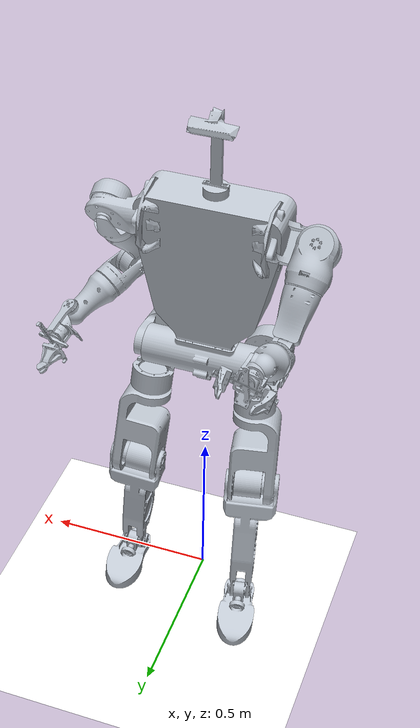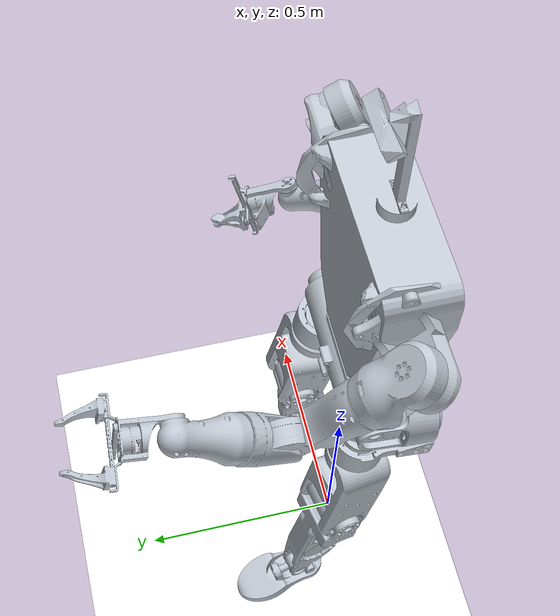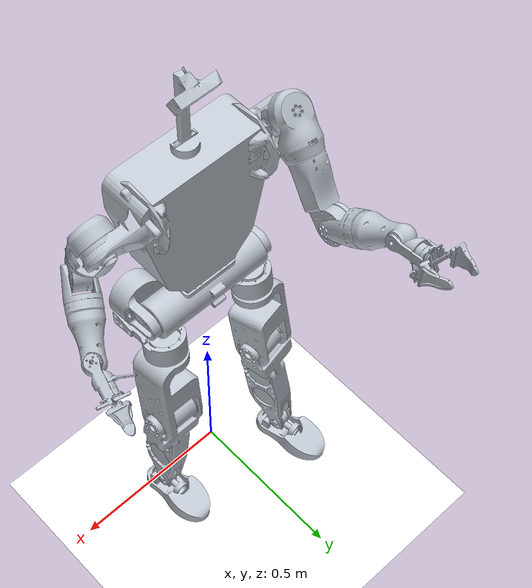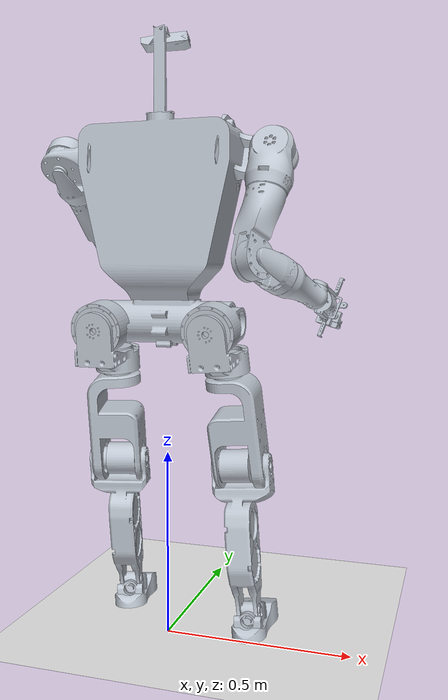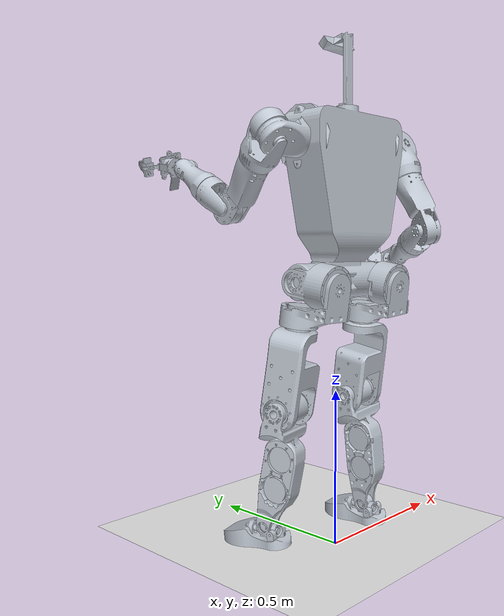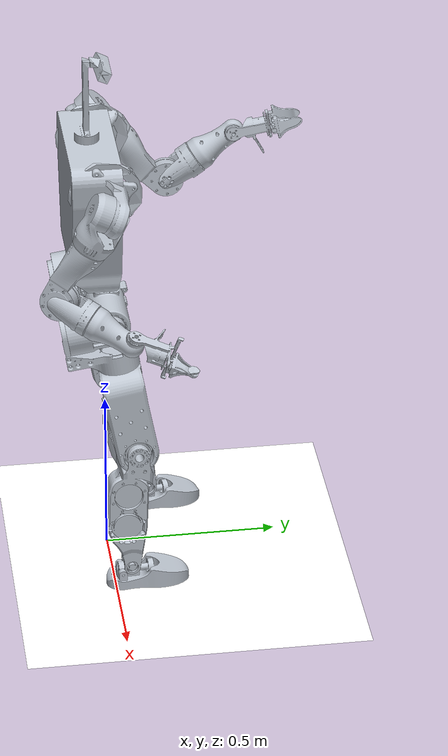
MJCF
<mujoco model="watonomous">
  <compiler angle="radian" meshdir="meshes" />
  <default>
    <motor ctrlrange="-1 1" ctrllimited="true" />
    <joint actuatorfrclimited="true" />
  </default>
  <asset>
    <mesh name="Left_ankle_rs03_bottom_2" content_type="model/stl" file="Left_ankle_rs03_bottom_2.stl" />
    <mesh name="Mirrorlink1__1__1" content_type="model/stl" file="Mirrorlink1__1__1.stl" />
    <mesh name="Mirrorlink2__1__1" content_type="model/stl" file="Mirrorlink2__1__1.stl" />
    <mesh name="Mirrorlink3__1__1" content_type="model/stl" file="Mirrorlink3__1__1.stl" />
    <mesh name="Mirrorlink4__1__1" content_type="model/stl" file="Mirrorlink4__1__1.stl" />
    <mesh name="Mirrorlink5__1__1" content_type="model/stl" file="Mirrorlink5__1__1.stl" />
    <mesh name="Mirrorlink6__1__1" content_type="model/stl" file="Mirrorlink6__1__1.stl" />
    <mesh name="Mirrorlink7__1__1" content_type="model/stl" file="Mirrorlink7__1__1.stl" />
    <mesh name="Mirrorlink8__1__1" content_type="model/stl" file="Mirrorlink8__1__1.stl" />
    <mesh name="Torso_1" content_type="model/stl" file="Torso_1.stl" />
    <mesh name="baseLink__1__1" content_type="model/stl" file="baseLink__1__1.stl" />
    <mesh name="base_link_1" content_type="model/stl" file="base_link_1.stl" />
    <mesh name="left_ankle_rs03_top_2" content_type="model/stl" file="left_ankle_rs03_top_2.stl" />
    <mesh name="left_calf_1" content_type="model/stl" file="left_calf_1.stl" />
    <mesh name="left_foot_1" content_type="model/stl" file="left_foot_1.stl" />
    <mesh name="left_foot_joint_1" content_type="model/stl" file="left_foot_joint_1.stl" />
    <mesh name="left_hip_a_1" content_type="model/stl" file="left_hip_a_1.stl" />
    <mesh name="left_hip_akh70_2" content_type="model/stl" file="left_hip_akh70_2.stl" />
    <mesh name="left_hip_r_1" content_type="model/stl" file="left_hip_r_1.stl" />
    <mesh name="left_hip_rs04_2" content_type="model/stl" file="left_hip_rs04_2.stl" />
    <mesh name="left_knee_akh70_2" content_type="model/stl" file="left_knee_akh70_2.stl" />
    <mesh name="left_thigh_1" content_type="model/stl" file="left_thigh_1.stl" />
    <mesh name="left_thigh_rs03_2" content_type="model/stl" file="left_thigh_rs03_2.stl" />
    <mesh name="link1__1__1" content_type="model/stl" file="link1__1__1.stl" />
    <mesh name="link2__1__1" content_type="model/stl" file="link2__1__1.stl" />
    <mesh name="link3__1__1" content_type="model/stl" file="link3__1__1.stl" />
    <mesh name="link4__1__1" content_type="model/stl" file="link4__1__1.stl" />
    <mesh name="link5__1__1" content_type="model/stl" file="link5__1__1.stl" />
    <mesh name="link6__1__1" content_type="model/stl" file="link6__1__1.stl" />
    <mesh name="link7__1__1" content_type="model/stl" file="link7__1__1.stl" />
    <mesh name="link8__1__1" content_type="model/stl" file="link8__1__1.stl" />
    <mesh name="right_ankle_rs03_bottom_1" content_type="model/stl" file="right_ankle_rs03_bottom_1.stl" />
    <mesh name="right_ankle_rs03_top_1" content_type="model/stl" file="right_ankle_rs03_top_1.stl" />
    <mesh name="right_calf_1" content_type="model/stl" file="right_calf_1.stl" />
    <mesh name="right_foot_1" content_type="model/stl" file="right_foot_1.stl" />
    <mesh name="right_foot_joint_1" content_type="model/stl" file="right_foot_joint_1.stl" />
    <mesh name="right_hip_a_1" content_type="model/stl" file="right_hip_a_1.stl" />
    <mesh name="right_hip_akh70_1" content_type="model/stl" file="right_hip_akh70_1.stl" />
    <mesh name="right_hip_r_1" content_type="model/stl" file="right_hip_r_1.stl" />
    <mesh name="right_hip_rs04_1" content_type="model/stl" file="right_hip_rs04_1.stl" />
    <mesh name="right_knee_akh70_1" content_type="model/stl" file="right_knee_akh70_1.stl" />
    <mesh name="right_thigh_1" content_type="model/stl" file="right_thigh_1.stl" />
    <mesh name="right_thigh_rs03_1" content_type="model/stl" file="right_thigh_rs03_1.stl" />
  </asset>
  <worldbody>
    <body name="base_link" pos="0 0 0.8535">
      <freejoint name="floating_base" />
      <inertial pos="-1.20497e-07 3.93947e-08 -0.00012957" quat="3.76761e-05 0.707107 3.75111e-05 0.707107" mass="1.19665" diaginertia="0.0150146 0.0149971 0.00326235" />
      <geom quat="1 0 0 0" type="mesh" mesh="base_link_1" rgba="0.75 0.78 0.82 1" />
      <body name="left_hip_a_1" pos="0.1725 0 0">
        <inertial pos="-0.334636 -0.0659424 -0.00910036" quat="0.627069 0.693475 -0.242356 -0.259115" mass="0.491846" diaginertia="0.00174758 0.00150854 0.00123942" />
        <joint name="left_hip_a_akh70" range="-3.14159 3.14159" actuatorfrcrange="-10 10" axis="1 0 0" />
        <geom pos="0 0 0" quat="1 0 0 0" type="mesh" mesh="left_hip_a_1" rgba="0.75 0.78 0.82 1" />
        <body name="left_hip_r_1" pos="-0.324 -0.124226 -0.0178379">
          <inertial pos="-0.000993292 0.0688852 -0.0674795" quat="0.321097 0.634504 -0.629266 0.31357" mass="0.67665" diaginertia="0.0038984 0.00373833 0.0012894" />
          <joint name="left_hip_r_rs04" range="-3.14159 3.14159" actuatorfrcrange="-10 10" axis="0 -0.989847 -0.142134" />
          <geom pos="0 0 0" quat="1 0 0 0" type="mesh" mesh="left_hip_r_1" rgba="0.75 0.78 0.82 1" />
          <body name="left_thigh_1" pos="-0.0017637 0.146029 -0.116415">
            <inertial pos="-0.0180835 0.0123797 -0.130626" quat="0.642525 0.0589338 -0.0372262 0.763088" mass="2.17912" diaginertia="0.0150862 0.0138054 0.00643898" />
            <joint name="left_thigh_rs03" range="-3.14159 3.14159" actuatorfrcrange="-10 10" axis="-0.0129684 0.142122 -0.989764" />
            <geom pos="0 0 0" quat="1 0 0 0" type="mesh" mesh="left_thigh_1" rgba="0.75 0.78 0.82 1" />
            <body name="left_calf_1" pos="0.0529001 0.0488549 -0.257882">
              <inertial pos="-0.0666406 0.0118696 -0.152758" quat="0.401908 0.0944338 -0.0890123 0.906438" mass="1.43369" diaginertia="0.0187737 0.0185226 0.00331151" />
              <joint name="left_knee_akh70" range="-0.01 2.3671" actuatorfrcrange="-10 10" axis="-0.978979 -0.203302 -0.0163655" />
              <geom pos="0 0 0" quat="1 0 0 0" type="mesh" mesh="left_calf_1" rgba="0.75 0.78 0.82 1" />
              <body name="Left_ankle_rs03_bottom_2" pos="-0.062919 0.0243711 -0.257128" quat="0.0259317 0.994393 0.10194 0.0108873">
                <inertial pos="0.000163048 3.73708e-08 0.000186383" quat="1 0 -0.000458908 0" mass="0.350905" diaginertia="0.000355215 0.00026261 0.000258651" />
                <geom type="mesh" mesh="Left_ankle_rs03_bottom_2" rgba="0.75 0.78 0.82 1" />
              </body>
              <body name="left_ankle_rs03_top_2" pos="-0.0577604 0.00378351 -0.157199" quat="0.993185 -0.0554329 -0.013908 0.101572">
                <inertial pos="0.000163047 1.40134e-06 -0.000186253" quat="0.999994 -0.0033125 0.000458885 4.82048e-06" mass="0.350905" diaginertia="0.000355215 0.00026261 0.000258651" />
                <geom quat="1 0 0 0" type="mesh" mesh="left_ankle_rs03_top_2" rgba="0.75 0.78 0.82 1" />
              </body>
              <body name="left_foot_joint_1" pos="-0.0980839 0.0631868 -0.386417">
                <inertial pos="0.0312043 0.00788592 -0.00926134" quat="0.658595 0.745481 0.0711374 0.0738229" mass="0.097636" diaginertia="5.00843e-05 4.04901e-05 3.16199e-05" />
                <joint name="left_foot_joint_simMotor1" range="-3.14159 3.14159" actuatorfrcrange="-10 10" axis="-0.978979 -0.203302 -0.0163655" />
                <geom quat="1 0 0 0" type="mesh" mesh="left_foot_joint_1" rgba="0.75 0.78 0.82 1" />
                <body name="left_foot_1" pos="0.0189421 0.0679296 -0.021642">
                  <inertial pos="0.00191123 -0.00155989 -0.0231386" quat="0.44839 0.506539 -0.442558 0.588649" mass="0.699866" diaginertia="0.00330102 0.00285448 0.000756632" />
                  <joint name="left_foot_joint_simMotor2" range="-3.14159 3.14159" actuatorfrcrange="-10 10" axis="0.201805 -0.977146 0.0667937" />
                  <geom quat="1 0 0 0" type="mesh" mesh="left_foot_1" rgba="0.75 0.78 0.82 1" />
                </body>
              </body>
            </body>
            <body name="left_hip_akh70_2" pos="-0.00290175 0.0372667 -0.258815" quat="0.993185 -0.0554329 -0.013908 0.101572">
              <inertial pos="0 0 2.1837e-09" quat="0.5 0.5 0.5 0.5" mass="0.508938" diaginertia="0.000529083 0.000529083 0.0005153" />
              <geom quat="1 0 0 0" type="mesh" mesh="left_hip_akh70_2" rgba="0.75 0.78 0.82 1" />
            </body>
          </body>
          <body name="left_hip_rs04_2" pos="-4.52641e-08 0.0238707 0.00342765" quat="0.997459 0.0712483 0 0">
            <inertial pos="4.52641e-08 -0.000200636 0" quat="0.707107 0 0 0.707107" mass="0.531297" diaginertia="0.000893588 0.000554602 0.000554602" />
            <geom quat="1 0 0 0" type="mesh" mesh="left_hip_rs04_2" rgba="0.75 0.78 0.82 1" />
          </body>
          <body name="left_thigh_rs03_2" pos="-0.00127631 0.14131 -0.0805746" quat="0.997207 0.0710873 0.00803331 -0.021476">
            <inertial pos="4.45266e-08 -0.00018612 0.000163052" quat="0.49977 0.500229 -0.500229 0.49977" mass="0.350905" diaginertia="0.000355215 0.00026261 0.000258651" />
            <geom quat="1 0 0 0" type="mesh" mesh="left_thigh_rs03_2" rgba="0.75 0.78 0.82 1" />
          </body>
        </body>
      </body>
      <body name="right_hip_a_1" pos="0.1805 0 0">
        <inertial pos="-0.0183642 -0.0658303 -0.00987847" quat="0.622963 0.697167 0.240819 0.260541" mass="0.491846" diaginertia="0.00174758 0.00150854 0.00123942" />
        <joint name="right_hip_a_akh70" range="-3.14159 3.14159" actuatorfrcrange="-10 10" axis="1 0 0" />
        <geom quat="1 0 0 0" type="mesh" mesh="right_hip_a_1" rgba="0.75 0.78 0.82 1" />
        <body name="right_hip_r_1" pos="-0.029 -0.124007 -0.0193037">
          <inertial pos="0.00579209 0.0696446 -0.0664509" quat="0.291509 0.617894 -0.648721 0.335249" mass="0.67665" diaginertia="0.0038984 0.00373833 0.0012894" />
          <joint name="right_hip_r_rs04" range="-3.14159 3.14159" actuatorfrcrange="-10 10" axis="0 0.9881 0.153815" />
          <geom pos="0 0 0" quat="1 0 0 0" type="mesh" mesh="right_hip_r_1" rgba="0.75 0.78 0.82 1" />
          <body name="right_hip_rs04_1" pos="4.4896e-08 0.0238286 0.00370933" quat="0.995132 0.076991 -0.0613434 -0.00474599">
            <inertial pos="-4.52641e-08 -0.000200636 0" quat="0.707107 0 0 0.707107" mass="0.531297" diaginertia="0.000893588 0.000554602 0.000554602" />
            <geom quat="1 0 0 0" type="mesh" mesh="right_hip_rs04_1" rgba="0.75 0.78 0.82 1" />
          </body>
          <body name="right_thigh_1" pos="0.0102847 0.147336 -0.114308">
            <inertial pos="0.0256342 0.0179485 -0.128484" quat="0.67507 0.0122862 -0.0919189 0.731902" mass="2.17912" diaginertia="0.0150862 0.0138054 0.00643898" />
            <joint name="right_thigh_rs03" range="-3.14159 3.14159" actuatorfrcrange="-10 10" axis="-0.0756231 -0.153374 0.98527" />
            <geom pos="0 0 0" quat="1 0 0 0" type="mesh" mesh="right_thigh_1" rgba="0.75 0.78 0.82 1" />
            <body name="right_calf_1" pos="-0.0282213 0.038187 -0.261631">
              <inertial pos="0.0673126 -0.0116473 -0.148101" quat="0.852802 -0.0365474 -0.0642176 0.516981" mass="1.4337" diaginertia="0.0187736 0.0185225 0.00331152" />
              <joint name="right_knee_akh70" range="-2.1008 0.2492" actuatorfrcrange="-10 10" axis="0.995783 0.0398417 0.0826321" />
              <geom pos="0 0 0" quat="1 0 0 0" type="mesh" mesh="right_calf_1" rgba="0.75 0.78 0.82 1" />
              <body name="right_ankle_rs03_bottom_1" pos="0.0721302 -0.0271261 -0.252874" quat="0.998906 -0.0088435 -0.0415346 0.0195749">
                <inertial pos="-0.000163048 3.73708e-08 0.000186383" quat="1 0 0.000458908 0" mass="0.350905" diaginertia="0.000355215 0.00026261 0.000258651" />
                <geom type="mesh" mesh="right_ankle_rs03_bottom_1" rgba="0.75 0.78 0.82 1" />
              </body>
              <body name="right_ankle_rs03_top_1" pos="0.0609499 -0.0226191 -0.150571" quat="0.998906 -0.0088435 -0.0415346 0.0195749">
                <inertial pos="-0.000163047 1.40134e-06 -0.000186253" quat="0.999994 -0.0033125 -0.000458885 -4.82048e-06" mass="0.350905" diaginertia="0.000355215 0.00026261 0.000258651" />
                <geom quat="1 0 0 0" type="mesh" mesh="right_ankle_rs03_top_1" rgba="0.75 0.78 0.82 1" />
              </body>
              <body name="right_foot_joint_1" pos="0.11139 -0.0145845 -0.385309">
                <inertial pos="-0.0251758 0.00107408 -0.0117768" quat="0.633909 0.772044 -0.0108338 0.04462" mass="0.097636" diaginertia="5.00843e-05 4.04901e-05 3.16199e-05" />
                <joint name="right_foot_joint_simMotor1" range="-3.14159 3.14159" actuatorfrcrange="-10 10" axis="-0.995783 -0.0398417 -0.0826321" />
                <geom quat="1 0 0 0" type="mesh" mesh="right_foot_joint_1" rgba="0.75 0.78 0.82 1" />
                <body name="right_foot_1" pos="-0.0235242 -0.0228609 -0.0201394">
                  <inertial pos="-0.0013897 0.0857708 -0.0227092" quat="0.472471 0.481304 -0.506825 0.536886" mass="0.699869" diaginertia="0.00330112 0.00285461 0.000756613" />
                  <joint name="right_foot_joint_simMotor2" range="-3.14159 3.14159" actuatorfrcrange="-10 10" axis="0.0404269 -0.999168 -0.00542131" />
                  <geom pos="0 0 0" quat="1 0 0 0" type="mesh" mesh="right_foot_1" rgba="0.75 0.78 0.82 1" />
                </body>
              </body>
            </body>
            <body name="right_hip_akh70_1" pos="0.0155932 0.03994 -0.257995" quat="0.998906 -0.0088435 -0.0415346 0.0195749">
              <inertial pos="0 0 2.1837e-09" quat="0.5 0.5 0.5 0.5" mass="0.508938" diaginertia="0.000529083 0.000529083 0.0005153" />
              <geom quat="1 0 0 0" type="mesh" mesh="right_hip_akh70_1" rgba="0.75 0.78 0.82 1" />
            </body>
          </body>
          <body name="right_thigh_rs03_1" pos="0.00843775 0.14405 -0.0904504" quat="0.996077 0.0761313 -0.039609 0.0215693">
            <inertial pos="-9.25839e-08 -0.000186307 0.000163053" quat="0.49977 0.500229 -0.500229 0.49977" mass="0.350905" diaginertia="0.000355215 0.00026261 0.000258651" />
            <geom quat="1 0 0 0" type="mesh" mesh="right_thigh_rs03_1" rgba="0.75 0.78 0.82 1" />
          </body>
        </body>
        <body name="right_knee_akh70_1" pos="-0.04 -3.57798e-08 -2.23571e-08">
          <inertial pos="0 3.57799e-08 2.23571e-08" quat="0.5 0.5 0.5 0.5" mass="0.508938" diaginertia="0.000529083 0.000529083 0.0005153" />
          <geom quat="1 0 0 0" type="mesh" mesh="right_knee_akh70_1" rgba="0.75 0.78 0.82 1" />
        </body>
      </body>
      <body name="left_knee_akh70_2" pos="-0.1405 -3.57798e-08 -2.23571e-08">
        <inertial pos="0 3.57799e-08 2.23571e-08" quat="0.5 0.5 0.5 0.5" mass="0.508938" diaginertia="0.000529083 0.000529083 0.0005153" />
        <geom quat="1 0 0 0" type="mesh" mesh="left_knee_akh70_2" rgba="0.75 0.78 0.82 1" />
      </body>
      <body name="Torso_1" pos="-0.000265633 -0.0328623 0.316904">
        <inertial pos="6.30908e-07 -0.000495985 -0.00370899" quat="0.707094 -0.00433449 0.00435114 0.707093" mass="20.7857" diaginertia="0.522099 0.337545 0.251238" />
        <geom quat="1 0 0 0" type="mesh" mesh="Torso_1" rgba="0.75 0.78 0.82 1" />
        <body name="baseLink__1__1" pos="-0.000171042 0.0249092 0.202255" quat="0.707107 0.707107 0 0">
          <inertial pos="5.96184e-05 -0.0572138 0.00368352" quat="0.00672254 0.707076 0.00697154 0.707071" mass="1.43809" diaginertia="0.044226 0.031185 0.0170028" />
          <geom quat="1 0 0 0" type="mesh" mesh="baseLink__1__1" rgba="0.75 0.78 0.82 1" />
          <body name="Mirrorlink1__1__1" pos="-0.174956 -0.0937785 0.0022638" quat="0.707107 -0.707107 0 0">
            <inertial pos="-0.0749027 -0.00423957 -0.00450875" quat="0.249724 0.630239 0.270776 0.68346" mass="0.946635" diaginertia="0.0034469 0.0031871 0.00161968" />
            <joint name="left_shoulder_ak10_1_pitch" range="-3.14159 3.14159" actuatorfrcrange="-10 10" axis="1 0 0" />
            <geom pos="0 0 0" quat="1 0 0 0" type="mesh" mesh="Mirrorlink1__1__1" rgba="0.75 0.78 0.82 1" />
            <body name="Mirrorlink2__1__1" pos="-0.118 0.0231635 0.0246435">
              <inertial pos="0.00505842 0.0238275 -0.0408455" quat="0.569672 0.370412 -0.460133 0.571442" mass="0.524799" diaginertia="0.00172195 0.00166282 0.000944388" />
              <joint name="left_shoulder_ak10_2_roll" range="-3.14159 3.14159" actuatorfrcrange="-10 10" axis="0 0.684889 0.728648" />
              <geom quat="1 0 0 0" type="mesh" mesh="Mirrorlink2__1__1" rgba="0.75 0.78 0.82 1" />
              <body name="Mirrorlink3__1__1" pos="0.0127184 0.0655119 -0.0983581">
                <inertial pos="0.0116059 0.0679991 -0.0720769" quat="0.917582 0.392949 -0.0602576 0.00164175" mass="0.617862" diaginertia="0.00343804 0.00334021 0.00082279" />
                <joint name="left_elbow_ak80_1_yaw" range="-3.14159 3.14159" actuatorfrcrange="-10 10" axis="0.109831 0.72424 -0.680745" />
                <geom pos="0 0 0" quat="1 0 0 0" type="mesh" mesh="Mirrorlink3__1__1" rgba="0.75 0.78 0.82 1" />
                <body name="Mirrorlink4__1__1" pos="-0.0066485 0.134572 -0.12981">
                  <inertial pos="0.0233741 0.0437133 0.0335335" quat="0.319371 0.571173 -0.667501 0.355254" mass="0.236091" diaginertia="0.000495335 0.000357572 0.000333954" />
                  <joint name="left_elbow_ak80_2_bend" range="-1.1553 1.3947" actuatorfrcrange="-10 10" axis="-0.990026 0.018913 -0.139609" />
                  <geom pos="0 0 0" quat="1 0 0 0" type="mesh" mesh="Mirrorlink4__1__1" rgba="0.75 0.78 0.82 1" />
                  <body name="Mirrorlink5__1__1" pos="0.0198227 0.0866623 0.0609852">
                    <inertial pos="-0.00570706 0.0620362 0.0405389" quat="0.466476 0.877253 -0.0929979 0.0646407" mass="0.260214" diaginertia="0.000838287 0.000824981 0.000259347" />
                    <joint name="left_elbow_ak80_3_forearm" range="-3.14159 3.14159" actuatorfrcrange="-10 10" axis="-0.0613685 0.834101 0.548188" />
                    <geom quat="1 0 0 0" type="mesh" mesh="Mirrorlink5__1__1" rgba="0.75 0.78 0.82 1" />
                    <body name="Mirrorlink6__1__1" pos="0.00606767 0.108213 0.0749958">
                      <inertial pos="-0.000346416 0.0638444 0.0087323" quat="0.52071 0.441188 -0.651758 0.330796" mass="0.12042" diaginertia="0.000213813 0.000192995 8.72472e-05" />
                      <joint name="left_wrist_gl40" range="-3.14159 3.14159" actuatorfrcrange="-10 10" axis="0.972892 -0.0727014 0.219533" />
                      <geom pos="0 0 0" quat="1 0 0 0" type="mesh" mesh="Mirrorlink6__1__1" rgba="0.75 0.78 0.82 1" />
                      <body name="Mirrorlink7__1__1" pos="0.063669 0.10578 0.0283409">
                        <inertial pos="-0.0168411 0.0261004 0.00873655" quat="0.595432 0.78365 -0.176782 0.0100159" mass="0.0372921" diaginertia="2.58482e-05 1.98943e-05 9.22e-06" />
                        <joint name="left_claw_1" type="slide" range="-0.012 0.1132" actuatorfrcrange="-10 10" axis="-0.972892 0.0727014 -0.219533" />
                        <geom quat="1 0 0 0" type="mesh" mesh="Mirrorlink7__1__1" rgba="0.75 0.78 0.82 1" />
                      </body>
                      <body name="Mirrorlink8__1__1" pos="-0.0790833 0.114302 0.00770496">
                        <inertial pos="0.0185682 0.026371 0.000986306" quat="0.66742 0.727539 -0.0612952 0.146559" mass="0.0372921" diaginertia="2.58483e-05 1.98943e-05 9.22004e-06" />
                        <joint name="left_claw_2" type="slide" range="-0.0022 0.124" actuatorfrcrange="-10 10" axis="0.972892 -0.0727014 0.219533" />
                        <geom quat="1 0 0 0" type="mesh" mesh="Mirrorlink8__1__1" rgba="0.75 0.78 0.82 1" />
                      </body>
                    </body>
                  </body>
                </body>
              </body>
            </body>
          </body>
          <body name="link1__1__1" pos="0.176102 -0.0937785 0.0022638" quat="0.707107 -0.707107 0 0">
            <inertial pos="0.073903 0.00552871 -0.00278143" quat="0.577095 0.355707 0.625788 0.385777" mass="0.946645" diaginertia="0.00344694 0.00318714 0.00161969" />
            <joint name="right_shoulder_ak10_1_pitch" range="-3.14159 3.14159" actuatorfrcrange="-10 10" axis="1 0 0" />
            <geom pos="0 0 0" quat="1 0 0 0" type="mesh" mesh="link1__1__1" rgba="0.75 0.78 0.82 1" />
            <body name="link2__1__1" pos="0.117 -0.0248558 0.0124976">
              <inertial pos="-0.00252818 -0.0138114 -0.0440368" quat="0.325436 0.625471 -0.644454 0.295899" mass="0.5248" diaginertia="0.00172196 0.00166283 0.000944396" />
              <joint name="right_shoulder_ak10_2_roll" range="-3.14159 3.14159" actuatorfrcrange="-10 10" axis="0 0.893422 -0.449218" />
              <geom type="mesh" mesh="link2__1__1" rgba="0.75 0.78 0.82 1" />
              <body name="link3__1__1" pos="-0.00656941 -0.0335774 -0.113083">
                <inertial pos="-0.024491 -0.0461959 -0.0993159" quat="0.947706 -0.22367 0.0286298 -0.225845" mass="0.342962" diaginertia="0.00197483 0.00177842 0.000319943" />
                <joint name="right_elbow_ak80_1_yaw" range="-3.14159 3.14159" actuatorfrcrange="-10 10" axis="-0.0564867 -0.4485 -0.891996" />
                <geom type="mesh" mesh="link3__1__1" rgba="0.75 0.78 0.82 1" />
                <body name="link4__1__1" pos="-0.0237878 -0.0755627 -0.166331">
                  <inertial pos="0.0402839 0.0349208 -0.0173156" quat="0.682726 0.254868 -0.476915 0.491406" mass="0.236092" diaginertia="0.000495334 0.000357572 0.000333954" />
                  <joint name="right_elbow_ak80_2_bend" range="-0.8936 1.6564" actuatorfrcrange="-10 10" axis="-0.879792 0.444721 -0.167894" />
                  <geom pos="0 0 0" quat="1 0 0 0" type="mesh" mesh="link4__1__1" rgba="0.75 0.78 0.82 1" />
                  <body name="link5__1__1" pos="0.0663194 0.0772254 -0.0387358">
                    <inertial pos="0.0334722 0.0560576 -0.0287172" quat="0.74308 0.311454 -0.474971 0.353881" mass="0.26021" diaginertia="0.00083828 0.000824975 0.000259344" />
                    <joint name="right_elbow_ak80_3_forearm" range="-3.14159 3.14159" actuatorfrcrange="-10 10" axis="0.473703 0.790773 -0.387665" />
                    <geom pos="0 0 0" quat="1 0 0 0" type="mesh" mesh="link5__1__1" rgba="0.75 0.78 0.82 1" />
                    <body name="link6__1__1" pos="0.0700893 0.108983 -0.0222293">
                      <inertial pos="0.00501656 0.0551513 -0.0376938" quat="0.686038 0.711608 -0.0824805 -0.127134" mass="0.12042" diaginertia="0.000213811 0.000192997 8.72482e-05" />
                      <joint name="right_wrist_gl40" range="-3.14159 3.14159" actuatorfrcrange="-10 10" axis="-0.315178 -0.258811 -0.913061" />
                      <geom quat="1 0 0 0" type="mesh" mesh="link6__1__1" rgba="0.75 0.78 0.82 1" />
                      <body name="link7__1__1" pos="0.00876437 0.0967081 -0.0612481">
                        <inertial pos="0.00750132 0.0180959 -0.0256411" quat="0.680471 0.440669 -0.468119 0.351618" mass="0.0372921" diaginertia="2.58489e-05 1.98948e-05 9.21995e-06" />
                        <joint name="right_claw_1" type="slide" range="-0.081 0.044" actuatorfrcrange="-10 10" axis="-0.315178 -0.258811 -0.913061" />
                        <geom quat="1 0 0 0" type="mesh" mesh="link7__1__1" rgba="0.75 0.78 0.82 1" />
                      </body>
                      <body name="link8__1__1" pos="0.00502738 0.0822721 -0.103671">
                        <inertial pos="0.00337215 0.0310918 0.0079452" quat="0.726823 0.409221 -0.307353 0.45804" mass="0.0372921" diaginertia="2.58488e-05 1.98949e-05 9.21991e-06" />
                        <joint name="right_claw_2" type="slide" range="-0.028 0.089" actuatorfrcrange="-10 10" axis="0.315178 0.258811 0.913061" />
                        <geom quat="1 0 0 0" type="mesh" mesh="link8__1__1" rgba="0.75 0.78 0.82 1" />
                      </body>
                    </body>
                  </body>
                </body>
              </body>
            </body>
          </body>
        </body>
      </body>
    </body>
  </worldbody>
  <actuator>
    <motor name="left_hip_a_akh70" joint="left_hip_a_akh70" />
    <motor name="left_hip_r_rs04" joint="left_hip_r_rs04" />
    <motor name="left_thigh_rs03" joint="left_thigh_rs03" />
    <motor name="left_knee_akh70" joint="left_knee_akh70" />
    <motor name="left_foot_joint_simMotor1" joint="left_foot_joint_simMotor1" />
    <motor name="left_foot_joint_simMotor2" joint="left_foot_joint_simMotor2" />
    <motor name="right_hip_a_akh70" joint="right_hip_a_akh70" />
    <motor name="right_hip_r_rs04" joint="right_hip_r_rs04" />
    <motor name="right_thigh_rs03" joint="right_thigh_rs03" />
    <motor name="right_knee_akh70" joint="right_knee_akh70" />
    <motor name="right_foot_joint_simMotor1" joint="right_foot_joint_simMotor1" />
    <motor name="right_foot_joint_simMotor2" joint="right_foot_joint_simMotor2" />
    <motor name="left_shoulder_ak10_1_pitch" joint="left_shoulder_ak10_1_pitch" />
    <motor name="left_shoulder_ak10_2_roll" joint="left_shoulder_ak10_2_roll" />
    <motor name="left_elbow_ak80_1_yaw" joint="left_elbow_ak80_1_yaw" />
    <motor name="left_elbow_ak80_2_bend" joint="left_elbow_ak80_2_bend" />
    <motor name="left_elbow_ak80_3_forearm" joint="left_elbow_ak80_3_forearm" />
    <motor name="left_wrist_gl40" joint="left_wrist_gl40" />
    <motor name="left_claw_1" joint="left_claw_1" />
    <motor name="left_claw_2" joint="left_claw_2" />
    <motor name="right_shoulder_ak10_1_pitch" joint="right_shoulder_ak10_1_pitch" />
    <motor name="right_shoulder_ak10_2_roll" joint="right_shoulder_ak10_2_roll" />
    <motor name="right_elbow_ak80_1_yaw" joint="right_elbow_ak80_1_yaw" />
    <motor name="right_elbow_ak80_2_bend" joint="right_elbow_ak80_2_bend" />
    <motor name="right_elbow_ak80_3_forearm" joint="right_elbow_ak80_3_forearm" />
    <motor name="right_wrist_gl40" joint="right_wrist_gl40" />
    <motor name="right_claw_1" joint="right_claw_1" />
    <motor name="right_claw_2" joint="right_claw_2" />
  </actuator>

  <!-- setup scene -->
  <statistic center="1.0 0.7 1.0" extent="0.8"/>
  <visual>
    <headlight diffuse="0.6 0.6 0.6" ambient="0.1 0.1 0.1" specular="0.9 0.9 0.9"/>
    <rgba haze="0.15 0.25 0.35 1"/>
    <global azimuth="-140" elevation="-20" offwidth="2080" offheight="1170"/>
  </visual>
  <asset>
    <texture type="skybox" builtin="gradient" rgb1="1 1 1" rgb2="1 1 1" width="800" height="800"/>
    <texture type="2d" name="groundplane" builtin="checker" mark="edge" rgb1="1 1 1" rgb2="1 1 1" markrgb="0 0 0"
      width="300" height="300"/>
    <material name="groundplane" texture="groundplane" texuniform="true" texrepeat="5 5" reflectance="0"/>
  </asset>
  <worldbody>
    <geom name="floor" size="0 0 0.01" type="plane" material="groundplane" contype="1" conaffinity="0" priority="1"
      friction="0.6" condim="3"/>
    <light diffuse=".5 .5 .5" pos="-3 -3 5" dir="3 3 -5" castshadow="true"/>
  </worldbody>
</mujoco>
